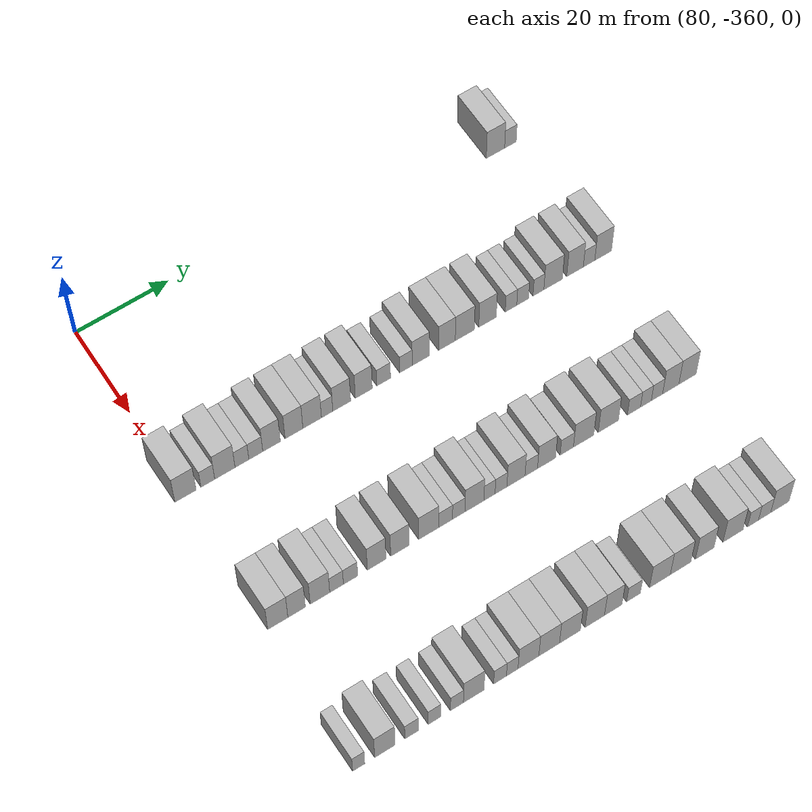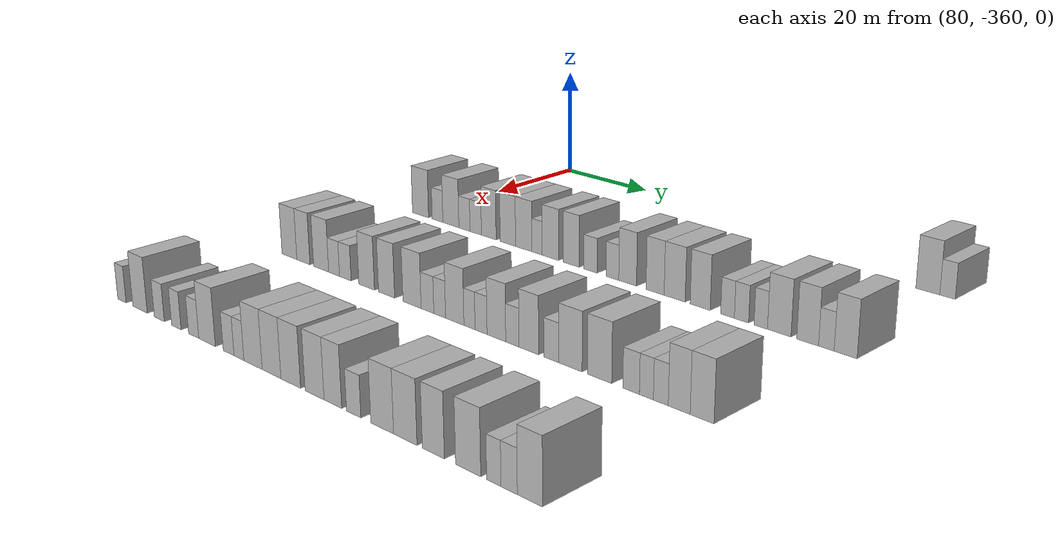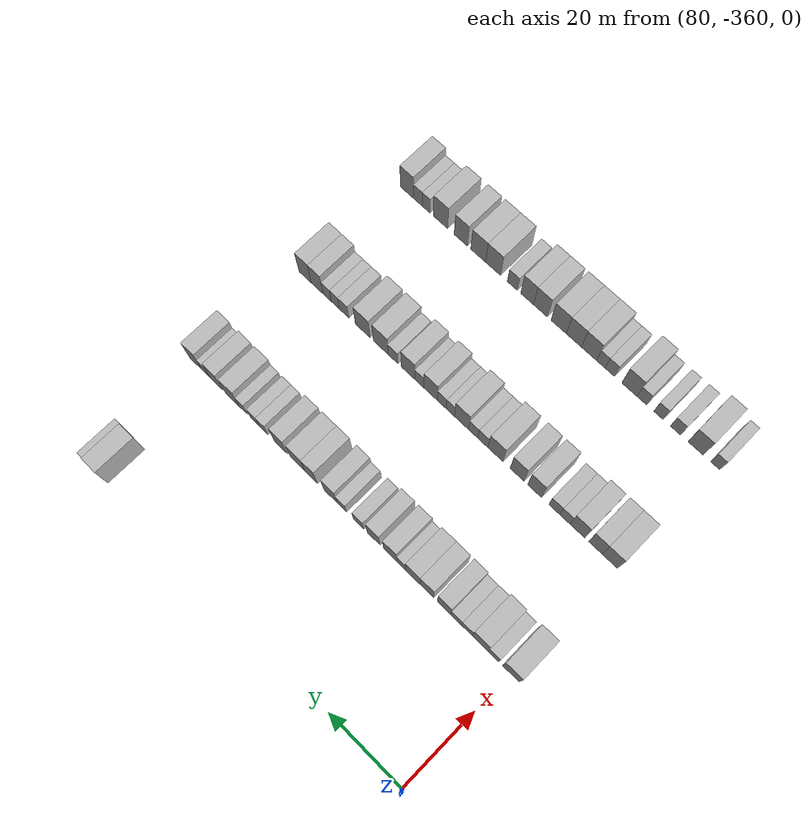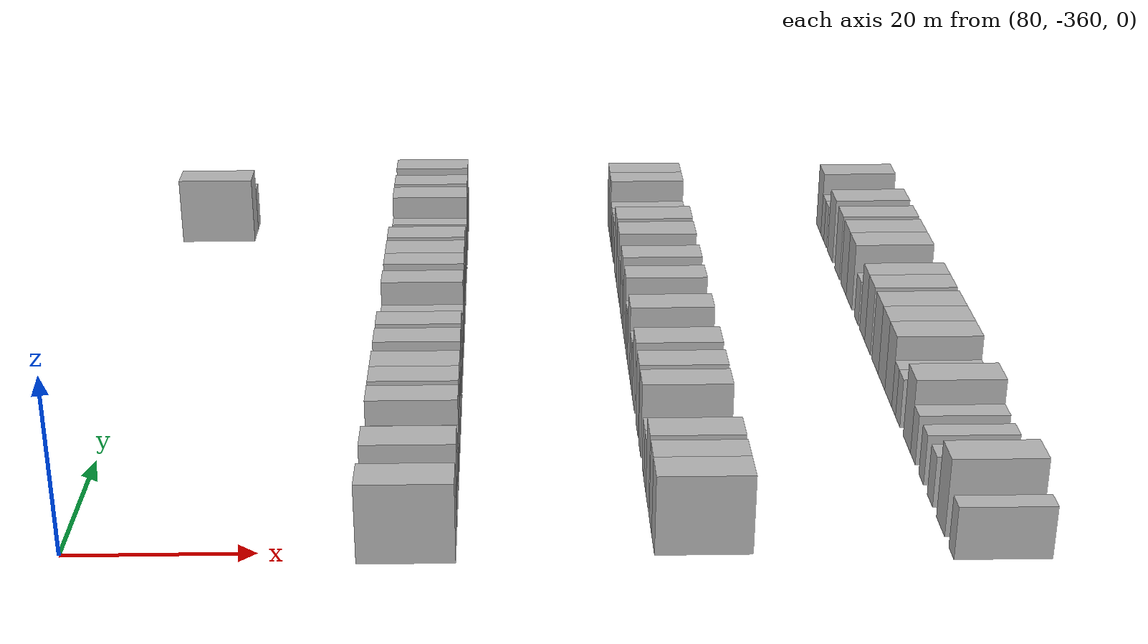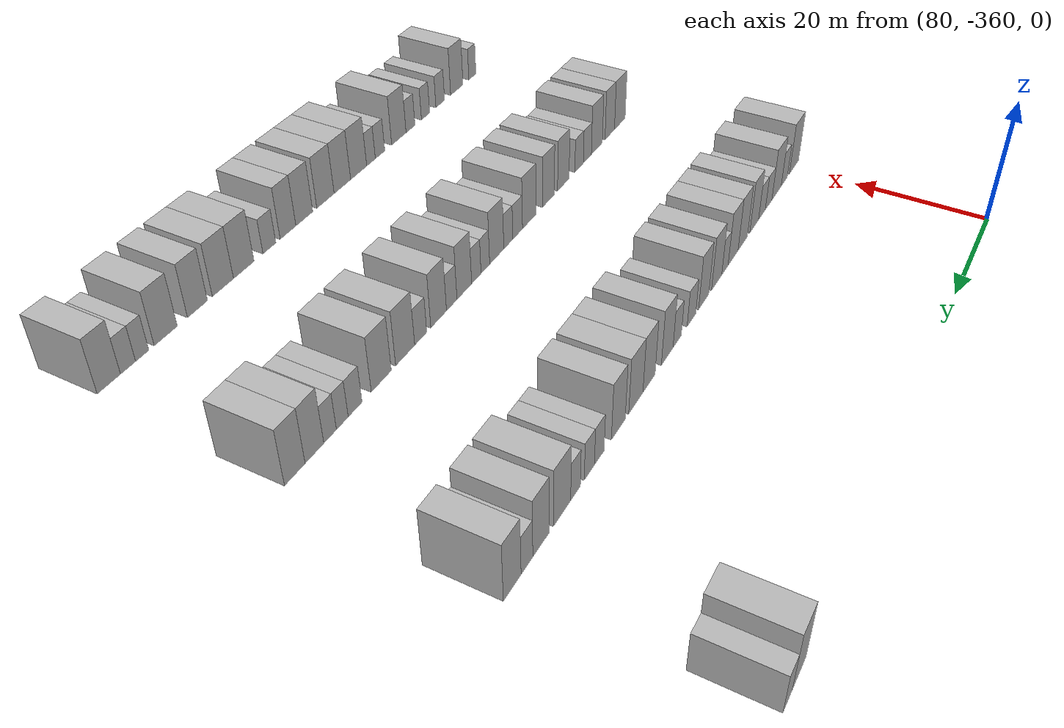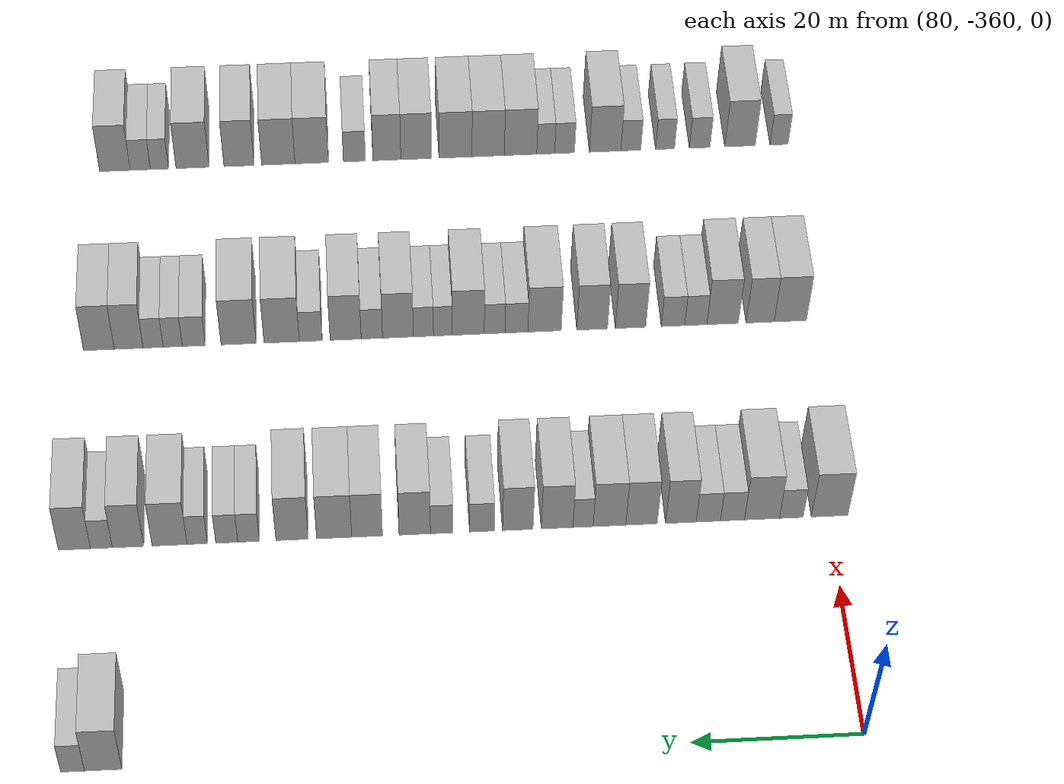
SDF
<sdf version="1.6">
 <world name="default">
  <model name="building_507">
   <static>1</static>
   <pose>85.0000 -273.1132 0 0.000000 0.000000 0.000000</pose>
   <link name="link">
    <pose>0 0 4.50 0 0 0</pose>
    <collision name="collision"><geometry><box><size>10.0000 4.2393 9.0000</size></box></geometry></collision>
    <visual name="visual">
     <cast_shadows>0</cast_shadows>
     <geometry><box><size>10.0000 4.2393 9.0000</size></box></geometry>
     <material>
      <script>
       <uri>model://HANNAS_wall/materials/scripts</uri>
       <uri>model://HANNAS_wall/materials/textures</uri>
       <name>vrc/HANNAS_wall</name>
      </script>
     </material>
    </visual>
   </link>
  </model>
  <model name="building_508">
   <static>1</static>
   <pose>85.0000 -269.6487 0 0.000000 0.000000 0.000000</pose>
   <link name="link">
    <pose>0 0 3.00 0 0 0</pose>
    <collision name="collision"><geometry><box><size>10.0000 2.6899 6.0000</size></box></geometry></collision>
    <visual name="visual">
     <cast_shadows>0</cast_shadows>
     <geometry><box><size>10.0000 2.6899 6.0000</size></box></geometry>
     <material>
      <script>
       <uri>model://HANNAS_wall/materials/scripts</uri>
       <uri>model://HANNAS_wall/materials/textures</uri>
       <name>vrc/HANNAS_wall</name>
      </script>
     </material>
    </visual>
   </link>
  </model>
  <model name="building_715">
   <static>1</static>
   <pose>115.0000 -360.1234 0 0.000000 0.000000 0.000000</pose>
   <link name="link">
    <pose>0 0 4.50 0 0 0</pose>
    <collision name="collision"><geometry><box><size>10.0000 4.4433 9.0000</size></box></geometry></collision>
    <visual name="visual">
     <cast_shadows>0</cast_shadows>
     <geometry><box><size>10.0000 4.4433 9.0000</size></box></geometry>
     <material>
      <script>
       <uri>model://HANNAS_wall/materials/scripts</uri>
       <uri>model://HANNAS_wall/materials/textures</uri>
       <name>vrc/HANNAS_wall</name>
      </script>
     </material>
    </visual>
   </link>
  </model>
  <model name="building_716">
   <static>1</static>
   <pose>115.0000 -355.4570 0 0.000000 0.000000 0.000000</pose>
   <link name="link">
    <pose>0 0 3.00 0 0 0</pose>
    <collision name="collision"><geometry><box><size>10.0000 2.8895 6.0000</size></box></geometry></collision>
    <visual name="visual">
     <cast_shadows>0</cast_shadows>
     <geometry><box><size>10.0000 2.8895 6.0000</size></box></geometry>
     <material>
      <script>
       <uri>model://HANNAS_wall/materials/scripts</uri>
       <uri>model://HANNAS_wall/materials/textures</uri>
       <name>vrc/HANNAS_wall</name>
      </script>
     </material>
    </visual>
   </link>
  </model>
  <model name="building_717">
   <static>1</static>
   <pose>115.0000 -351.8802 0 0.000000 0.000000 0.000000</pose>
   <link name="link">
    <pose>0 0 4.50 0 0 0</pose>
    <collision name="collision"><geometry><box><size>10.0000 4.2643 9.0000</size></box></geometry></collision>
    <visual name="visual">
     <cast_shadows>0</cast_shadows>
     <geometry><box><size>10.0000 4.2643 9.0000</size></box></geometry>
     <material>
      <script>
       <uri>model://HANNAS_wall/materials/scripts</uri>
       <uri>model://HANNAS_wall/materials/textures</uri>
       <name>vrc/HANNAS_wall</name>
      </script>
     </material>
    </visual>
   </link>
  </model>
  <model name="building_718">
   <static>1</static>
   <pose>115.0000 -348.2892 0 0.000000 0.000000 0.000000</pose>
   <link name="link">
    <pose>0 0 3.00 0 0 0</pose>
    <collision name="collision"><geometry><box><size>10.0000 2.9176 6.0000</size></box></geometry></collision>
    <visual name="visual">
     <cast_shadows>0</cast_shadows>
     <geometry><box><size>10.0000 2.9176 6.0000</size></box></geometry>
     <material>
      <script>
       <uri>model://HANNAS_wall/materials/scripts</uri>
       <uri>model://HANNAS_wall/materials/textures</uri>
       <name>vrc/HANNAS_wall</name>
      </script>
     </material>
    </visual>
   </link>
  </model>
  <model name="building_719">
   <static>1</static>
   <pose>115.0000 -345.3534 0 0.000000 0.000000 0.000000</pose>
   <link name="link">
    <pose>0 0 3.00 0 0 0</pose>
    <collision name="collision"><geometry><box><size>10.0000 2.9541 6.0000</size></box></geometry></collision>
    <visual name="visual">
     <cast_shadows>0</cast_shadows>
     <geometry><box><size>10.0000 2.9541 6.0000</size></box></geometry>
     <material>
      <script>
       <uri>model://HANNAS_wall/materials/scripts</uri>
       <uri>model://HANNAS_wall/materials/textures</uri>
       <name>vrc/HANNAS_wall</name>
      </script>
     </material>
    </visual>
   </link>
  </model>
  <model name="building_720">
   <static>1</static>
   <pose>115.0000 -342.0150 0 0.000000 0.000000 0.000000</pose>
   <link name="link">
    <pose>0 0 4.50 0 0 0</pose>
    <collision name="collision"><geometry><box><size>10.0000 3.7225 9.0000</size></box></geometry></collision>
    <visual name="visual">
     <cast_shadows>0</cast_shadows>
     <geometry><box><size>10.0000 3.7225 9.0000</size></box></geometry>
     <material>
      <script>
       <uri>model://HANNAS_wall/materials/scripts</uri>
       <uri>model://HANNAS_wall/materials/textures</uri>
       <name>vrc/HANNAS_wall</name>
      </script>
     </material>
    </visual>
   </link>
  </model>
  <model name="building_721">
   <static>1</static>
   <pose>115.0000 -337.2494 0 0.000000 0.000000 0.000000</pose>
   <link name="link">
    <pose>0 0 4.50 0 0 0</pose>
    <collision name="collision"><geometry><box><size>10.0000 3.8089 9.0000</size></box></geometry></collision>
    <visual name="visual">
     <cast_shadows>0</cast_shadows>
     <geometry><box><size>10.0000 3.8089 9.0000</size></box></geometry>
     <material>
      <script>
       <uri>model://HANNAS_wall/materials/scripts</uri>
       <uri>model://HANNAS_wall/materials/textures</uri>
       <name>vrc/HANNAS_wall</name>
      </script>
     </material>
    </visual>
   </link>
  </model>
  <model name="building_722">
   <static>1</static>
   <pose>115.0000 -333.3593 0 0.000000 0.000000 0.000000</pose>
   <link name="link">
    <pose>0 0 4.50 0 0 0</pose>
    <collision name="collision"><geometry><box><size>10.0000 3.9713 9.0000</size></box></geometry></collision>
    <visual name="visual">
     <cast_shadows>0</cast_shadows>
     <geometry><box><size>10.0000 3.9713 9.0000</size></box></geometry>
     <material>
      <script>
       <uri>model://HANNAS_wall/materials/scripts</uri>
       <uri>model://HANNAS_wall/materials/textures</uri>
       <name>vrc/HANNAS_wall</name>
      </script>
     </material>
    </visual>
   </link>
  </model>
  <model name="building_723">
   <static>1</static>
   <pose>115.0000 -330.1546 0 0.000000 0.000000 0.000000</pose>
   <link name="link">
    <pose>0 0 3.00 0 0 0</pose>
    <collision name="collision"><geometry><box><size>10.0000 2.4380 6.0000</size></box></geometry></collision>
    <visual name="visual">
     <cast_shadows>0</cast_shadows>
     <geometry><box><size>10.0000 2.4380 6.0000</size></box></geometry>
     <material>
      <script>
       <uri>model://HANNAS_wall/materials/scripts</uri>
       <uri>model://HANNAS_wall/materials/textures</uri>
       <name>vrc/HANNAS_wall</name>
      </script>
     </material>
    </visual>
   </link>
  </model>
  <model name="building_724">
   <static>1</static>
   <pose>115.0000 -327.0117 0 0.000000 0.000000 0.000000</pose>
   <link name="link">
    <pose>0 0 4.50 0 0 0</pose>
    <collision name="collision"><geometry><box><size>10.0000 3.8478 9.0000</size></box></geometry></collision>
    <visual name="visual">
     <cast_shadows>0</cast_shadows>
     <geometry><box><size>10.0000 3.8478 9.0000</size></box></geometry>
     <material>
      <script>
       <uri>model://HANNAS_wall/materials/scripts</uri>
       <uri>model://HANNAS_wall/materials/textures</uri>
       <name>vrc/HANNAS_wall</name>
      </script>
     </material>
    </visual>
   </link>
  </model>
  <model name="building_725">
   <static>1</static>
   <pose>115.0000 -322.2455 0 0.000000 0.000000 0.000000</pose>
   <link name="link">
    <pose>0 0 4.50 0 0 0</pose>
    <collision name="collision"><geometry><box><size>10.0000 3.6845 9.0000</size></box></geometry></collision>
    <visual name="visual">
     <cast_shadows>0</cast_shadows>
     <geometry><box><size>10.0000 3.6845 9.0000</size></box></geometry>
     <material>
      <script>
       <uri>model://HANNAS_wall/materials/scripts</uri>
       <uri>model://HANNAS_wall/materials/textures</uri>
       <name>vrc/HANNAS_wall</name>
      </script>
     </material>
    </visual>
   </link>
  </model>
  <model name="building_726">
   <static>1</static>
   <pose>115.0000 -317.9139 0 0.000000 0.000000 0.000000</pose>
   <link name="link">
    <pose>0 0 3.00 0 0 0</pose>
    <collision name="collision"><geometry><box><size>10.0000 2.9788 6.0000</size></box></geometry></collision>
    <visual name="visual">
     <cast_shadows>0</cast_shadows>
     <geometry><box><size>10.0000 2.9788 6.0000</size></box></geometry>
     <material>
      <script>
       <uri>model://HANNAS_wall/materials/scripts</uri>
       <uri>model://HANNAS_wall/materials/textures</uri>
       <name>vrc/HANNAS_wall</name>
      </script>
     </material>
    </visual>
   </link>
  </model>
  <model name="building_727">
   <static>1</static>
   <pose>115.0000 -313.0531 0 0.000000 0.000000 0.000000</pose>
   <link name="link">
    <pose>0 0 3.00 0 0 0</pose>
    <collision name="collision"><geometry><box><size>10.0000 2.7428 6.0000</size></box></geometry></collision>
    <visual name="visual">
     <cast_shadows>0</cast_shadows>
     <geometry><box><size>10.0000 2.7428 6.0000</size></box></geometry>
     <material>
      <script>
       <uri>model://HANNAS_wall/materials/scripts</uri>
       <uri>model://HANNAS_wall/materials/textures</uri>
       <name>vrc/HANNAS_wall</name>
      </script>
     </material>
    </visual>
   </link>
  </model>
  <model name="building_728">
   <static>1</static>
   <pose>115.0000 -309.7960 0 0.000000 0.000000 0.000000</pose>
   <link name="link">
    <pose>0 0 4.50 0 0 0</pose>
    <collision name="collision"><geometry><box><size>10.0000 3.7714 9.0000</size></box></geometry></collision>
    <visual name="visual">
     <cast_shadows>0</cast_shadows>
     <geometry><box><size>10.0000 3.7714 9.0000</size></box></geometry>
     <material>
      <script>
       <uri>model://HANNAS_wall/materials/scripts</uri>
       <uri>model://HANNAS_wall/materials/textures</uri>
       <name>vrc/HANNAS_wall</name>
      </script>
     </material>
    </visual>
   </link>
  </model>
  <model name="building_729">
   <static>1</static>
   <pose>115.0000 -304.0534 0 0.000000 0.000000 0.000000</pose>
   <link name="link">
    <pose>0 0 4.50 0 0 0</pose>
    <collision name="collision"><geometry><box><size>10.0000 3.7137 9.0000</size></box></geometry></collision>
    <visual name="visual">
     <cast_shadows>0</cast_shadows>
     <geometry><box><size>10.0000 3.7137 9.0000</size></box></geometry>
     <material>
      <script>
       <uri>model://HANNAS_wall/materials/scripts</uri>
       <uri>model://HANNAS_wall/materials/textures</uri>
       <name>vrc/HANNAS_wall</name>
      </script>
     </material>
    </visual>
   </link>
  </model>
  <model name="building_730">
   <static>1</static>
   <pose>115.0000 -300.0844 0 0.000000 0.000000 0.000000</pose>
   <link name="link">
    <pose>0 0 4.50 0 0 0</pose>
    <collision name="collision"><geometry><box><size>10.0000 4.2243 9.0000</size></box></geometry></collision>
    <visual name="visual">
     <cast_shadows>0</cast_shadows>
     <geometry><box><size>10.0000 4.2243 9.0000</size></box></geometry>
     <material>
      <script>
       <uri>model://HANNAS_wall/materials/scripts</uri>
       <uri>model://HANNAS_wall/materials/textures</uri>
       <name>vrc/HANNAS_wall</name>
      </script>
     </material>
    </visual>
   </link>
  </model>
  <model name="building_731">
   <static>1</static>
   <pose>115.0000 -295.0228 0 0.000000 0.000000 0.000000</pose>
   <link name="link">
    <pose>0 0 4.50 0 0 0</pose>
    <collision name="collision"><geometry><box><size>10.0000 3.8989 9.0000</size></box></geometry></collision>
    <visual name="visual">
     <cast_shadows>0</cast_shadows>
     <geometry><box><size>10.0000 3.8989 9.0000</size></box></geometry>
     <material>
      <script>
       <uri>model://HANNAS_wall/materials/scripts</uri>
       <uri>model://HANNAS_wall/materials/textures</uri>
       <name>vrc/HANNAS_wall</name>
      </script>
     </material>
    </visual>
   </link>
  </model>
  <model name="building_732">
   <static>1</static>
   <pose>115.0000 -289.7770 0 0.000000 0.000000 0.000000</pose>
   <link name="link">
    <pose>0 0 3.00 0 0 0</pose>
    <collision name="collision"><geometry><box><size>10.0000 2.5926 6.0000</size></box></geometry></collision>
    <visual name="visual">
     <cast_shadows>0</cast_shadows>
     <geometry><box><size>10.0000 2.5926 6.0000</size></box></geometry>
     <material>
      <script>
       <uri>model://HANNAS_wall/materials/scripts</uri>
       <uri>model://HANNAS_wall/materials/textures</uri>
       <name>vrc/HANNAS_wall</name>
      </script>
     </material>
    </visual>
   </link>
  </model>
  <model name="building_733">
   <static>1</static>
   <pose>115.0000 -287.1568 0 0.000000 0.000000 0.000000</pose>
   <link name="link">
    <pose>0 0 3.00 0 0 0</pose>
    <collision name="collision"><geometry><box><size>10.0000 2.6479 6.0000</size></box></geometry></collision>
    <visual name="visual">
     <cast_shadows>0</cast_shadows>
     <geometry><box><size>10.0000 2.6479 6.0000</size></box></geometry>
     <material>
      <script>
       <uri>model://HANNAS_wall/materials/scripts</uri>
       <uri>model://HANNAS_wall/materials/textures</uri>
       <name>vrc/HANNAS_wall</name>
      </script>
     </material>
    </visual>
   </link>
  </model>
  <model name="building_734">
   <static>1</static>
   <pose>115.0000 -283.6092 0 0.000000 0.000000 0.000000</pose>
   <link name="link">
    <pose>0 0 3.00 0 0 0</pose>
    <collision name="collision"><geometry><box><size>10.0000 2.4473 6.0000</size></box></geometry></collision>
    <visual name="visual">
     <cast_shadows>0</cast_shadows>
     <geometry><box><size>10.0000 2.4473 6.0000</size></box></geometry>
     <material>
      <script>
       <uri>model://HANNAS_wall/materials/scripts</uri>
       <uri>model://HANNAS_wall/materials/textures</uri>
       <name>vrc/HANNAS_wall</name>
      </script>
     </material>
    </visual>
   </link>
  </model>
  <model name="building_735">
   <static>1</static>
   <pose>115.0000 -280.2866 0 0.000000 0.000000 0.000000</pose>
   <link name="link">
    <pose>0 0 4.50 0 0 0</pose>
    <collision name="collision"><geometry><box><size>10.0000 4.1977 9.0000</size></box></geometry></collision>
    <visual name="visual">
     <cast_shadows>0</cast_shadows>
     <geometry><box><size>10.0000 4.1977 9.0000</size></box></geometry>
     <material>
      <script>
       <uri>model://HANNAS_wall/materials/scripts</uri>
       <uri>model://HANNAS_wall/materials/textures</uri>
       <name>vrc/HANNAS_wall</name>
      </script>
     </material>
    </visual>
   </link>
  </model>
  <model name="building_736">
   <static>1</static>
   <pose>115.0000 -275.3016 0 0.000000 0.000000 0.000000</pose>
   <link name="link">
    <pose>0 0 4.50 0 0 0</pose>
    <collision name="collision"><geometry><box><size>10.0000 3.7723 9.0000</size></box></geometry></collision>
    <visual name="visual">
     <cast_shadows>0</cast_shadows>
     <geometry><box><size>10.0000 3.7723 9.0000</size></box></geometry>
     <material>
      <script>
       <uri>model://HANNAS_wall/materials/scripts</uri>
       <uri>model://HANNAS_wall/materials/textures</uri>
       <name>vrc/HANNAS_wall</name>
      </script>
     </material>
    </visual>
   </link>
  </model>
  <model name="building_737">
   <static>1</static>
   <pose>115.0000 -272.1037 0 0.000000 0.000000 0.000000</pose>
   <link name="link">
    <pose>0 0 3.00 0 0 0</pose>
    <collision name="collision"><geometry><box><size>10.0000 2.6237 6.0000</size></box></geometry></collision>
    <visual name="visual">
     <cast_shadows>0</cast_shadows>
     <geometry><box><size>10.0000 2.6237 6.0000</size></box></geometry>
     <material>
      <script>
       <uri>model://HANNAS_wall/materials/scripts</uri>
       <uri>model://HANNAS_wall/materials/textures</uri>
       <name>vrc/HANNAS_wall</name>
      </script>
     </material>
    </visual>
   </link>
  </model>
  <model name="building_738">
   <static>1</static>
   <pose>115.0000 -268.8791 0 0.000000 0.000000 0.000000</pose>
   <link name="link">
    <pose>0 0 4.50 0 0 0</pose>
    <collision name="collision"><geometry><box><size>10.0000 3.8254 9.0000</size></box></geometry></collision>
    <visual name="visual">
     <cast_shadows>0</cast_shadows>
     <geometry><box><size>10.0000 3.8254 9.0000</size></box></geometry>
     <material>
      <script>
       <uri>model://HANNAS_wall/materials/scripts</uri>
       <uri>model://HANNAS_wall/materials/textures</uri>
       <name>vrc/HANNAS_wall</name>
      </script>
     </material>
    </visual>
   </link>
  </model>
  <model name="building_950">
   <static>1</static>
   <pose>145.0000 -359.2117 0 0.000000 0.000000 0.000000</pose>
   <link name="link">
    <pose>0 0 4.50 0 0 0</pose>
    <collision name="collision"><geometry><box><size>10.0000 4.1515 9.0000</size></box></geometry></collision>
    <visual name="visual">
     <cast_shadows>0</cast_shadows>
     <geometry><box><size>10.0000 4.1515 9.0000</size></box></geometry>
     <material>
      <script>
       <uri>model://HANNAS_wall/materials/scripts</uri>
       <uri>model://HANNAS_wall/materials/textures</uri>
       <name>vrc/HANNAS_wall</name>
      </script>
     </material>
    </visual>
   </link>
  </model>
  <model name="building_951">
   <static>1</static>
   <pose>145.0000 -355.3317 0 0.000000 0.000000 0.000000</pose>
   <link name="link">
    <pose>0 0 4.50 0 0 0</pose>
    <collision name="collision"><geometry><box><size>10.0000 3.6085 9.0000</size></box></geometry></collision>
    <visual name="visual">
     <cast_shadows>0</cast_shadows>
     <geometry><box><size>10.0000 3.6085 9.0000</size></box></geometry>
     <material>
      <script>
       <uri>model://HANNAS_wall/materials/scripts</uri>
       <uri>model://HANNAS_wall/materials/textures</uri>
       <name>vrc/HANNAS_wall</name>
      </script>
     </material>
    </visual>
   </link>
  </model>
  <model name="building_952">
   <static>1</static>
   <pose>145.0000 -350.5087 0 0.000000 0.000000 0.000000</pose>
   <link name="link">
    <pose>0 0 4.50 0 0 0</pose>
    <collision name="collision"><geometry><box><size>10.0000 4.0374 9.0000</size></box></geometry></collision>
    <visual name="visual">
     <cast_shadows>0</cast_shadows>
     <geometry><box><size>10.0000 4.0374 9.0000</size></box></geometry>
     <material>
      <script>
       <uri>model://HANNAS_wall/materials/scripts</uri>
       <uri>model://HANNAS_wall/materials/textures</uri>
       <name>vrc/HANNAS_wall</name>
      </script>
     </material>
    </visual>
   </link>
  </model>
  <model name="building_953">
   <static>1</static>
   <pose>145.0000 -347.0653 0 0.000000 0.000000 0.000000</pose>
   <link name="link">
    <pose>0 0 3.00 0 0 0</pose>
    <collision name="collision"><geometry><box><size>10.0000 2.8495 6.0000</size></box></geometry></collision>
    <visual name="visual">
     <cast_shadows>0</cast_shadows>
     <geometry><box><size>10.0000 2.8495 6.0000</size></box></geometry>
     <material>
      <script>
       <uri>model://HANNAS_wall/materials/scripts</uri>
       <uri>model://HANNAS_wall/materials/textures</uri>
       <name>vrc/HANNAS_wall</name>
      </script>
     </material>
    </visual>
   </link>
  </model>
  <model name="building_954">
   <static>1</static>
   <pose>145.0000 -344.1446 0 0.000000 0.000000 0.000000</pose>
   <link name="link">
    <pose>0 0 3.00 0 0 0</pose>
    <collision name="collision"><geometry><box><size>10.0000 2.9919 6.0000</size></box></geometry></collision>
    <visual name="visual">
     <cast_shadows>0</cast_shadows>
     <geometry><box><size>10.0000 2.9919 6.0000</size></box></geometry>
     <material>
      <script>
       <uri>model://HANNAS_wall/materials/scripts</uri>
       <uri>model://HANNAS_wall/materials/textures</uri>
       <name>vrc/HANNAS_wall</name>
      </script>
     </material>
    </visual>
   </link>
  </model>
  <model name="building_955">
   <static>1</static>
   <pose>145.0000 -338.6968 0 0.000000 0.000000 0.000000</pose>
   <link name="link">
    <pose>0 0 4.50 0 0 0</pose>
    <collision name="collision"><geometry><box><size>10.0000 3.9037 9.0000</size></box></geometry></collision>
    <visual name="visual">
     <cast_shadows>0</cast_shadows>
     <geometry><box><size>10.0000 3.9037 9.0000</size></box></geometry>
     <material>
      <script>
       <uri>model://HANNAS_wall/materials/scripts</uri>
       <uri>model://HANNAS_wall/materials/textures</uri>
       <name>vrc/HANNAS_wall</name>
      </script>
     </material>
    </visual>
   </link>
  </model>
  <model name="building_956">
   <static>1</static>
   <pose>145.0000 -333.7832 0 0.000000 0.000000 0.000000</pose>
   <link name="link">
    <pose>0 0 4.50 0 0 0</pose>
    <collision name="collision"><geometry><box><size>10.0000 3.9234 9.0000</size></box></geometry></collision>
    <visual name="visual">
     <cast_shadows>0</cast_shadows>
     <geometry><box><size>10.0000 3.9234 9.0000</size></box></geometry>
     <material>
      <script>
       <uri>model://HANNAS_wall/materials/scripts</uri>
       <uri>model://HANNAS_wall/materials/textures</uri>
       <name>vrc/HANNAS_wall</name>
      </script>
     </material>
    </visual>
   </link>
  </model>
  <model name="building_957">
   <static>1</static>
   <pose>145.0000 -327.6876 0 0.000000 0.000000 0.000000</pose>
   <link name="link">
    <pose>0 0 4.50 0 0 0</pose>
    <collision name="collision"><geometry><box><size>10.0000 4.2677 9.0000</size></box></geometry></collision>
    <visual name="visual">
     <cast_shadows>0</cast_shadows>
     <geometry><box><size>10.0000 4.2677 9.0000</size></box></geometry>
     <material>
      <script>
       <uri>model://HANNAS_wall/materials/scripts</uri>
       <uri>model://HANNAS_wall/materials/textures</uri>
       <name>vrc/HANNAS_wall</name>
      </script>
     </material>
    </visual>
   </link>
  </model>
  <model name="building_958">
   <static>1</static>
   <pose>145.0000 -324.0923 0 0.000000 0.000000 0.000000</pose>
   <link name="link">
    <pose>0 0 3.00 0 0 0</pose>
    <collision name="collision"><geometry><box><size>10.0000 2.9228 6.0000</size></box></geometry></collision>
    <visual name="visual">
     <cast_shadows>0</cast_shadows>
     <geometry><box><size>10.0000 2.9228 6.0000</size></box></geometry>
     <material>
      <script>
       <uri>model://HANNAS_wall/materials/scripts</uri>
       <uri>model://HANNAS_wall/materials/textures</uri>
       <name>vrc/HANNAS_wall</name>
      </script>
     </material>
    </visual>
   </link>
  </model>
  <model name="building_959">
   <static>1</static>
   <pose>145.0000 -321.3006 0 0.000000 0.000000 0.000000</pose>
   <link name="link">
    <pose>0 0 3.00 0 0 0</pose>
    <collision name="collision"><geometry><box><size>10.0000 2.6607 6.0000</size></box></geometry></collision>
    <visual name="visual">
     <cast_shadows>0</cast_shadows>
     <geometry><box><size>10.0000 2.6607 6.0000</size></box></geometry>
     <material>
      <script>
       <uri>model://HANNAS_wall/materials/scripts</uri>
       <uri>model://HANNAS_wall/materials/textures</uri>
       <name>vrc/HANNAS_wall</name>
      </script>
     </material>
    </visual>
   </link>
  </model>
  <model name="building_960">
   <static>1</static>
   <pose>145.0000 -317.9375 0 0.000000 0.000000 0.000000</pose>
   <link name="link">
    <pose>0 0 4.50 0 0 0</pose>
    <collision name="collision"><geometry><box><size>10.0000 4.0654 9.0000</size></box></geometry></collision>
    <visual name="visual">
     <cast_shadows>0</cast_shadows>
     <geometry><box><size>10.0000 4.0654 9.0000</size></box></geometry>
     <material>
      <script>
       <uri>model://HANNAS_wall/materials/scripts</uri>
       <uri>model://HANNAS_wall/materials/textures</uri>
       <name>vrc/HANNAS_wall</name>
      </script>
     </material>
    </visual>
   </link>
  </model>
  <model name="building_961">
   <static>1</static>
   <pose>145.0000 -314.6981 0 0.000000 0.000000 0.000000</pose>
   <link name="link">
    <pose>0 0 3.00 0 0 0</pose>
    <collision name="collision"><geometry><box><size>10.0000 2.4136 6.0000</size></box></geometry></collision>
    <visual name="visual">
     <cast_shadows>0</cast_shadows>
     <geometry><box><size>10.0000 2.4136 6.0000</size></box></geometry>
     <material>
      <script>
       <uri>model://HANNAS_wall/materials/scripts</uri>
       <uri>model://HANNAS_wall/materials/textures</uri>
       <name>vrc/HANNAS_wall</name>
      </script>
     </material>
    </visual>
   </link>
  </model>
  <model name="building_962">
   <static>1</static>
   <pose>145.0000 -312.2097 0 0.000000 0.000000 0.000000</pose>
   <link name="link">
    <pose>0 0 3.00 0 0 0</pose>
    <collision name="collision"><geometry><box><size>10.0000 2.5632 6.0000</size></box></geometry></collision>
    <visual name="visual">
     <cast_shadows>0</cast_shadows>
     <geometry><box><size>10.0000 2.5632 6.0000</size></box></geometry>
     <material>
      <script>
       <uri>model://HANNAS_wall/materials/scripts</uri>
       <uri>model://HANNAS_wall/materials/textures</uri>
       <name>vrc/HANNAS_wall</name>
      </script>
     </material>
    </visual>
   </link>
  </model>
  <model name="building_963">
   <static>1</static>
   <pose>145.0000 -308.9674 0 0.000000 0.000000 0.000000</pose>
   <link name="link">
    <pose>0 0 4.50 0 0 0</pose>
    <collision name="collision"><geometry><box><size>10.0000 3.9214 9.0000</size></box></geometry></collision>
    <visual name="visual">
     <cast_shadows>0</cast_shadows>
     <geometry><box><size>10.0000 3.9214 9.0000</size></box></geometry>
     <material>
      <script>
       <uri>model://HANNAS_wall/materials/scripts</uri>
       <uri>model://HANNAS_wall/materials/textures</uri>
       <name>vrc/HANNAS_wall</name>
      </script>
     </material>
    </visual>
   </link>
  </model>
  <model name="building_964">
   <static>1</static>
   <pose>145.0000 -305.6493 0 0.000000 0.000000 0.000000</pose>
   <link name="link">
    <pose>0 0 3.00 0 0 0</pose>
    <collision name="collision"><geometry><box><size>10.0000 2.7146 6.0000</size></box></geometry></collision>
    <visual name="visual">
     <cast_shadows>0</cast_shadows>
     <geometry><box><size>10.0000 2.7146 6.0000</size></box></geometry>
     <material>
      <script>
       <uri>model://HANNAS_wall/materials/scripts</uri>
       <uri>model://HANNAS_wall/materials/textures</uri>
       <name>vrc/HANNAS_wall</name>
      </script>
     </material>
    </visual>
   </link>
  </model>
  <model name="building_965">
   <static>1</static>
   <pose>145.0000 -302.3167 0 0.000000 0.000000 0.000000</pose>
   <link name="link">
    <pose>0 0 4.50 0 0 0</pose>
    <collision name="collision"><geometry><box><size>10.0000 3.9507 9.0000</size></box></geometry></collision>
    <visual name="visual">
     <cast_shadows>0</cast_shadows>
     <geometry><box><size>10.0000 3.9507 9.0000</size></box></geometry>
     <material>
      <script>
       <uri>model://HANNAS_wall/materials/scripts</uri>
       <uri>model://HANNAS_wall/materials/textures</uri>
       <name>vrc/HANNAS_wall</name>
      </script>
     </material>
    </visual>
   </link>
  </model>
  <model name="building_966">
   <static>1</static>
   <pose>145.0000 -297.8799 0 0.000000 0.000000 0.000000</pose>
   <link name="link">
    <pose>0 0 3.00 0 0 0</pose>
    <collision name="collision"><geometry><box><size>10.0000 2.9227 6.0000</size></box></geometry></collision>
    <visual name="visual">
     <cast_shadows>0</cast_shadows>
     <geometry><box><size>10.0000 2.9227 6.0000</size></box></geometry>
     <material>
      <script>
       <uri>model://HANNAS_wall/materials/scripts</uri>
       <uri>model://HANNAS_wall/materials/textures</uri>
       <name>vrc/HANNAS_wall</name>
      </script>
     </material>
    </visual>
   </link>
  </model>
  <model name="building_967">
   <static>1</static>
   <pose>145.0000 -294.1831 0 0.000000 0.000000 0.000000</pose>
   <link name="link">
    <pose>0 0 4.50 0 0 0</pose>
    <collision name="collision"><geometry><box><size>10.0000 4.4710 9.0000</size></box></geometry></collision>
    <visual name="visual">
     <cast_shadows>0</cast_shadows>
     <geometry><box><size>10.0000 4.4710 9.0000</size></box></geometry>
     <material>
      <script>
       <uri>model://HANNAS_wall/materials/scripts</uri>
       <uri>model://HANNAS_wall/materials/textures</uri>
       <name>vrc/HANNAS_wall</name>
      </script>
     </material>
    </visual>
   </link>
  </model>
  <model name="building_968">
   <static>1</static>
   <pose>145.0000 -288.7161 0 0.000000 0.000000 0.000000</pose>
   <link name="link">
    <pose>0 0 4.50 0 0 0</pose>
    <collision name="collision"><geometry><box><size>10.0000 4.4629 9.0000</size></box></geometry></collision>
    <visual name="visual">
     <cast_shadows>0</cast_shadows>
     <geometry><box><size>10.0000 4.4629 9.0000</size></box></geometry>
     <material>
      <script>
       <uri>model://HANNAS_wall/materials/scripts</uri>
       <uri>model://HANNAS_wall/materials/textures</uri>
       <name>vrc/HANNAS_wall</name>
      </script>
     </material>
    </visual>
   </link>
  </model>
  <model name="building_969">
   <static>1</static>
   <pose>145.0000 -283.0248 0 0.000000 0.000000 0.000000</pose>
   <link name="link">
    <pose>0 0 3.00 0 0 0</pose>
    <collision name="collision"><geometry><box><size>10.0000 2.9198 6.0000</size></box></geometry></collision>
    <visual name="visual">
     <cast_shadows>0</cast_shadows>
     <geometry><box><size>10.0000 2.9198 6.0000</size></box></geometry>
     <material>
      <script>
       <uri>model://HANNAS_wall/materials/scripts</uri>
       <uri>model://HANNAS_wall/materials/textures</uri>
       <name>vrc/HANNAS_wall</name>
      </script>
     </material>
    </visual>
   </link>
  </model>
  <model name="building_970">
   <static>1</static>
   <pose>145.0000 -280.3466 0 0.000000 0.000000 0.000000</pose>
   <link name="link">
    <pose>0 0 3.00 0 0 0</pose>
    <collision name="collision"><geometry><box><size>10.0000 2.4364 6.0000</size></box></geometry></collision>
    <visual name="visual">
     <cast_shadows>0</cast_shadows>
     <geometry><box><size>10.0000 2.4364 6.0000</size></box></geometry>
     <material>
      <script>
       <uri>model://HANNAS_wall/materials/scripts</uri>
       <uri>model://HANNAS_wall/materials/textures</uri>
       <name>vrc/HANNAS_wall</name>
      </script>
     </material>
    </visual>
   </link>
  </model>
  <model name="building_971">
   <static>1</static>
   <pose>145.0000 -277.8633 0 0.000000 0.000000 0.000000</pose>
   <link name="link">
    <pose>0 0 3.00 0 0 0</pose>
    <collision name="collision"><geometry><box><size>10.0000 2.5303 6.0000</size></box></geometry></collision>
    <visual name="visual">
     <cast_shadows>0</cast_shadows>
     <geometry><box><size>10.0000 2.5303 6.0000</size></box></geometry>
     <material>
      <script>
       <uri>model://HANNAS_wall/materials/scripts</uri>
       <uri>model://HANNAS_wall/materials/textures</uri>
       <name>vrc/HANNAS_wall</name>
      </script>
     </material>
    </visual>
   </link>
  </model>
  <model name="building_972">
   <static>1</static>
   <pose>145.0000 -274.7669 0 0.000000 0.000000 0.000000</pose>
   <link name="link">
    <pose>0 0 4.50 0 0 0</pose>
    <collision name="collision"><geometry><box><size>10.0000 3.6625 9.0000</size></box></geometry></collision>
    <visual name="visual">
     <cast_shadows>0</cast_shadows>
     <geometry><box><size>10.0000 3.6625 9.0000</size></box></geometry>
     <material>
      <script>
       <uri>model://HANNAS_wall/materials/scripts</uri>
       <uri>model://HANNAS_wall/materials/textures</uri>
       <name>vrc/HANNAS_wall</name>
      </script>
     </material>
    </visual>
   </link>
  </model>
  <model name="building_973">
   <static>1</static>
   <pose>145.0000 -270.9950 0 0.000000 0.000000 0.000000</pose>
   <link name="link">
    <pose>0 0 4.50 0 0 0</pose>
    <collision name="collision"><geometry><box><size>10.0000 3.8813 9.0000</size></box></geometry></collision>
    <visual name="visual">
     <cast_shadows>0</cast_shadows>
     <geometry><box><size>10.0000 3.8813 9.0000</size></box></geometry>
     <material>
      <script>
       <uri>model://HANNAS_wall/materials/scripts</uri>
       <uri>model://HANNAS_wall/materials/textures</uri>
       <name>vrc/HANNAS_wall</name>
      </script>
     </material>
    </visual>
   </link>
  </model>
  <model name="building_1163">
   <static>1</static>
   <pose>175.0000 -361.5642 0 0.000000 0.000000 0.000000</pose>
   <link name="link">
    <pose>0 0 3.00 0 0 0</pose>
    <collision name="collision"><geometry><box><size>10.0000 2.4484 6.0000</size></box></geometry></collision>
    <visual name="visual">
     <cast_shadows>0</cast_shadows>
     <geometry><box><size>10.0000 2.4484 6.0000</size></box></geometry>
     <material>
      <script>
       <uri>model://HANNAS_wall/materials/scripts</uri>
       <uri>model://HANNAS_wall/materials/textures</uri>
       <name>vrc/HANNAS_wall</name>
      </script>
     </material>
    </visual>
   </link>
  </model>
  <model name="building_1164">
   <static>1</static>
   <pose>175.0000 -356.2756 0 0.000000 0.000000 0.000000</pose>
   <link name="link">
    <pose>0 0 4.50 0 0 0</pose>
    <collision name="collision"><geometry><box><size>10.0000 4.1288 9.0000</size></box></geometry></collision>
    <visual name="visual">
     <cast_shadows>0</cast_shadows>
     <geometry><box><size>10.0000 4.1288 9.0000</size></box></geometry>
     <material>
      <script>
       <uri>model://HANNAS_wall/materials/scripts</uri>
       <uri>model://HANNAS_wall/materials/textures</uri>
       <name>vrc/HANNAS_wall</name>
      </script>
     </material>
    </visual>
   </link>
  </model>
  <model name="building_1165">
   <static>1</static>
   <pose>175.0000 -350.8205 0 0.000000 0.000000 0.000000</pose>
   <link name="link">
    <pose>0 0 3.00 0 0 0</pose>
    <collision name="collision"><geometry><box><size>10.0000 2.7814 6.0000</size></box></geometry></collision>
    <visual name="visual">
     <cast_shadows>0</cast_shadows>
     <geometry><box><size>10.0000 2.7814 6.0000</size></box></geometry>
     <material>
      <script>
       <uri>model://HANNAS_wall/materials/scripts</uri>
       <uri>model://HANNAS_wall/materials/textures</uri>
       <name>vrc/HANNAS_wall</name>
      </script>
     </material>
    </visual>
   </link>
  </model>
  <model name="building_1166">
   <static>1</static>
   <pose>175.0000 -346.1458 0 0.000000 0.000000 0.000000</pose>
   <link name="link">
    <pose>0 0 3.00 0 0 0</pose>
    <collision name="collision"><geometry><box><size>10.0000 2.5680 6.0000</size></box></geometry></collision>
    <visual name="visual">
     <cast_shadows>0</cast_shadows>
     <geometry><box><size>10.0000 2.5680 6.0000</size></box></geometry>
     <material>
      <script>
       <uri>model://HANNAS_wall/materials/scripts</uri>
       <uri>model://HANNAS_wall/materials/textures</uri>
       <name>vrc/HANNAS_wall</name>
      </script>
     </material>
    </visual>
   </link>
  </model>
  <model name="building_1167">
   <static>1</static>
   <pose>175.0000 -341.5217 0 0.000000 0.000000 0.000000</pose>
   <link name="link">
    <pose>0 0 3.00 0 0 0</pose>
    <collision name="collision"><geometry><box><size>10.0000 2.6803 6.0000</size></box></geometry></collision>
    <visual name="visual">
     <cast_shadows>0</cast_shadows>
     <geometry><box><size>10.0000 2.6803 6.0000</size></box></geometry>
     <material>
      <script>
       <uri>model://HANNAS_wall/materials/scripts</uri>
       <uri>model://HANNAS_wall/materials/textures</uri>
       <name>vrc/HANNAS_wall</name>
      </script>
     </material>
    </visual>
   </link>
  </model>
  <model name="building_1168">
   <static>1</static>
   <pose>175.0000 -338.0541 0 0.000000 0.000000 0.000000</pose>
   <link name="link">
    <pose>0 0 4.50 0 0 0</pose>
    <collision name="collision"><geometry><box><size>10.0000 4.2548 9.0000</size></box></geometry></collision>
    <visual name="visual">
     <cast_shadows>0</cast_shadows>
     <geometry><box><size>10.0000 4.2548 9.0000</size></box></geometry>
     <material>
      <script>
       <uri>model://HANNAS_wall/materials/scripts</uri>
       <uri>model://HANNAS_wall/materials/textures</uri>
       <name>vrc/HANNAS_wall</name>
      </script>
     </material>
    </visual>
   </link>
  </model>
  <model name="building_1169">
   <static>1</static>
   <pose>175.0000 -332.5899 0 0.000000 0.000000 0.000000</pose>
   <link name="link">
    <pose>0 0 3.00 0 0 0</pose>
    <collision name="collision"><geometry><box><size>10.0000 2.6737 6.0000</size></box></geometry></collision>
    <visual name="visual">
     <cast_shadows>0</cast_shadows>
     <geometry><box><size>10.0000 2.6737 6.0000</size></box></geometry>
     <material>
      <script>
       <uri>model://HANNAS_wall/materials/scripts</uri>
       <uri>model://HANNAS_wall/materials/textures</uri>
       <name>vrc/HANNAS_wall</name>
      </script>
     </material>
    </visual>
   </link>
  </model>
  <model name="building_1170">
   <static>1</static>
   <pose>175.0000 -330.0458 0 0.000000 0.000000 0.000000</pose>
   <link name="link">
    <pose>0 0 3.00 0 0 0</pose>
    <collision name="collision"><geometry><box><size>10.0000 2.4147 6.0000</size></box></geometry></collision>
    <visual name="visual">
     <cast_shadows>0</cast_shadows>
     <geometry><box><size>10.0000 2.4147 6.0000</size></box></geometry>
     <material>
      <script>
       <uri>model://HANNAS_wall/materials/scripts</uri>
       <uri>model://HANNAS_wall/materials/textures</uri>
       <name>vrc/HANNAS_wall</name>
      </script>
     </material>
    </visual>
   </link>
  </model>
  <model name="building_1171">
   <static>1</static>
   <pose>175.0000 -326.6553 0 0.000000 0.000000 0.000000</pose>
   <link name="link">
    <pose>0 0 4.50 0 0 0</pose>
    <collision name="collision"><geometry><box><size>10.0000 4.3662 9.0000</size></box></geometry></collision>
    <visual name="visual">
     <cast_shadows>0</cast_shadows>
     <geometry><box><size>10.0000 4.3662 9.0000</size></box></geometry>
     <material>
      <script>
       <uri>model://HANNAS_wall/materials/scripts</uri>
       <uri>model://HANNAS_wall/materials/textures</uri>
       <name>vrc/HANNAS_wall</name>
      </script>
     </material>
    </visual>
   </link>
  </model>
  <model name="building_1172">
   <static>1</static>
   <pose>175.0000 -322.2942 0 0.000000 0.000000 0.000000</pose>
   <link name="link">
    <pose>0 0 4.50 0 0 0</pose>
    <collision name="collision"><geometry><box><size>10.0000 4.3561 9.0000</size></box></geometry></collision>
    <visual name="visual">
     <cast_shadows>0</cast_shadows>
     <geometry><box><size>10.0000 4.3561 9.0000</size></box></geometry>
     <material>
      <script>
       <uri>model://HANNAS_wall/materials/scripts</uri>
       <uri>model://HANNAS_wall/materials/textures</uri>
       <name>vrc/HANNAS_wall</name>
      </script>
     </material>
    </visual>
   </link>
  </model>
  <model name="building_1173">
   <static>1</static>
   <pose>175.0000 -317.9041 0 0.000000 0.000000 0.000000</pose>
   <link name="link">
    <pose>0 0 4.50 0 0 0</pose>
    <collision name="collision"><geometry><box><size>10.0000 4.4239 9.0000</size></box></geometry></collision>
    <visual name="visual">
     <cast_shadows>0</cast_shadows>
     <geometry><box><size>10.0000 4.4239 9.0000</size></box></geometry>
     <material>
      <script>
       <uri>model://HANNAS_wall/materials/scripts</uri>
       <uri>model://HANNAS_wall/materials/textures</uri>
       <name>vrc/HANNAS_wall</name>
      </script>
     </material>
    </visual>
   </link>
  </model>
  <model name="building_1174">
   <static>1</static>
   <pose>175.0000 -312.6291 0 0.000000 0.000000 0.000000</pose>
   <link name="link">
    <pose>0 0 4.50 0 0 0</pose>
    <collision name="collision"><geometry><box><size>10.0000 4.1262 9.0000</size></box></geometry></collision>
    <visual name="visual">
     <cast_shadows>0</cast_shadows>
     <geometry><box><size>10.0000 4.1262 9.0000</size></box></geometry>
     <material>
      <script>
       <uri>model://HANNAS_wall/materials/scripts</uri>
       <uri>model://HANNAS_wall/materials/textures</uri>
       <name>vrc/HANNAS_wall</name>
      </script>
     </material>
    </visual>
   </link>
  </model>
  <model name="building_1175">
   <static>1</static>
   <pose>175.0000 -308.6986 0 0.000000 0.000000 0.000000</pose>
   <link name="link">
    <pose>0 0 4.50 0 0 0</pose>
    <collision name="collision"><geometry><box><size>10.0000 3.7347 9.0000</size></box></geometry></collision>
    <visual name="visual">
     <cast_shadows>0</cast_shadows>
     <geometry><box><size>10.0000 3.7347 9.0000</size></box></geometry>
     <material>
      <script>
       <uri>model://HANNAS_wall/materials/scripts</uri>
       <uri>model://HANNAS_wall/materials/textures</uri>
       <name>vrc/HANNAS_wall</name>
      </script>
     </material>
    </visual>
   </link>
  </model>
  <model name="building_1176">
   <static>1</static>
   <pose>175.0000 -304.3551 0 0.000000 0.000000 0.000000</pose>
   <link name="link">
    <pose>0 0 3.00 0 0 0</pose>
    <collision name="collision"><geometry><box><size>10.0000 2.9523 6.0000</size></box></geometry></collision>
    <visual name="visual">
     <cast_shadows>0</cast_shadows>
     <geometry><box><size>10.0000 2.9523 6.0000</size></box></geometry>
     <material>
      <script>
       <uri>model://HANNAS_wall/materials/scripts</uri>
       <uri>model://HANNAS_wall/materials/textures</uri>
       <name>vrc/HANNAS_wall</name>
      </script>
     </material>
    </visual>
   </link>
  </model>
  <model name="building_1177">
   <static>1</static>
   <pose>175.0000 -298.6341 0 0.000000 0.000000 0.000000</pose>
   <link name="link">
    <pose>0 0 4.50 0 0 0</pose>
    <collision name="collision"><geometry><box><size>10.0000 4.4897 9.0000</size></box></geometry></collision>
    <visual name="visual">
     <cast_shadows>0</cast_shadows>
     <geometry><box><size>10.0000 4.4897 9.0000</size></box></geometry>
     <material>
      <script>
       <uri>model://HANNAS_wall/materials/scripts</uri>
       <uri>model://HANNAS_wall/materials/textures</uri>
       <name>vrc/HANNAS_wall</name>
      </script>
     </material>
    </visual>
   </link>
  </model>
  <model name="building_1178">
   <static>1</static>
   <pose>175.0000 -294.1574 0 0.000000 0.000000 0.000000</pose>
   <link name="link">
    <pose>0 0 4.50 0 0 0</pose>
    <collision name="collision"><geometry><box><size>10.0000 4.4638 9.0000</size></box></geometry></collision>
    <visual name="visual">
     <cast_shadows>0</cast_shadows>
     <geometry><box><size>10.0000 4.4638 9.0000</size></box></geometry>
     <material>
      <script>
       <uri>model://HANNAS_wall/materials/scripts</uri>
       <uri>model://HANNAS_wall/materials/textures</uri>
       <name>vrc/HANNAS_wall</name>
      </script>
     </material>
    </visual>
   </link>
  </model>
  <model name="building_1179">
   <static>1</static>
   <pose>175.0000 -288.9070 0 0.000000 0.000000 0.000000</pose>
   <link name="link">
    <pose>0 0 4.50 0 0 0</pose>
    <collision name="collision"><geometry><box><size>10.0000 4.0369 9.0000</size></box></geometry></collision>
    <visual name="visual">
     <cast_shadows>0</cast_shadows>
     <geometry><box><size>10.0000 4.0369 9.0000</size></box></geometry>
     <material>
      <script>
       <uri>model://HANNAS_wall/materials/scripts</uri>
       <uri>model://HANNAS_wall/materials/textures</uri>
       <name>vrc/HANNAS_wall</name>
      </script>
     </material>
    </visual>
   </link>
  </model>
  <model name="building_1180">
   <static>1</static>
   <pose>175.0000 -282.6842 0 0.000000 0.000000 0.000000</pose>
   <link name="link">
    <pose>0 0 4.50 0 0 0</pose>
    <collision name="collision"><geometry><box><size>10.0000 4.4087 9.0000</size></box></geometry></collision>
    <visual name="visual">
     <cast_shadows>0</cast_shadows>
     <geometry><box><size>10.0000 4.4087 9.0000</size></box></geometry>
     <material>
      <script>
       <uri>model://HANNAS_wall/materials/scripts</uri>
       <uri>model://HANNAS_wall/materials/textures</uri>
       <name>vrc/HANNAS_wall</name>
      </script>
     </material>
    </visual>
   </link>
  </model>
  <model name="building_1181">
   <static>1</static>
   <pose>175.0000 -278.2671 0 0.000000 0.000000 0.000000</pose>
   <link name="link">
    <pose>0 0 3.00 0 0 0</pose>
    <collision name="collision"><geometry><box><size>10.0000 2.4256 6.0000</size></box></geometry></collision>
    <visual name="visual">
     <cast_shadows>0</cast_shadows>
     <geometry><box><size>10.0000 2.4256 6.0000</size></box></geometry>
     <material>
      <script>
       <uri>model://HANNAS_wall/materials/scripts</uri>
       <uri>model://HANNAS_wall/materials/textures</uri>
       <name>vrc/HANNAS_wall</name>
      </script>
     </material>
    </visual>
   </link>
  </model>
  <model name="building_1182">
   <static>1</static>
   <pose>175.0000 -275.7043 0 0.000000 0.000000 0.000000</pose>
   <link name="link">
    <pose>0 0 3.00 0 0 0</pose>
    <collision name="collision"><geometry><box><size>10.0000 2.7000 6.0000</size></box></geometry></collision>
    <visual name="visual">
     <cast_shadows>0</cast_shadows>
     <geometry><box><size>10.0000 2.7000 6.0000</size></box></geometry>
     <material>
      <script>
       <uri>model://HANNAS_wall/materials/scripts</uri>
       <uri>model://HANNAS_wall/materials/textures</uri>
       <name>vrc/HANNAS_wall</name>
      </script>
     </material>
    </visual>
   </link>
  </model>
  <model name="building_1183">
   <static>1</static>
   <pose>175.0000 -272.3201 0 0.000000 0.000000 0.000000</pose>
   <link name="link">
    <pose>0 0 4.50 0 0 0</pose>
    <collision name="collision"><geometry><box><size>10.0000 4.0684 9.0000</size></box></geometry></collision>
    <visual name="visual">
     <cast_shadows>0</cast_shadows>
     <geometry><box><size>10.0000 4.0684 9.0000</size></box></geometry>
     <material>
      <script>
       <uri>model://HANNAS_wall/materials/scripts</uri>
       <uri>model://HANNAS_wall/materials/textures</uri>
       <name>vrc/HANNAS_wall</name>
      </script>
     </material>
    </visual>
   </link>
  </model>
 </world>
</sdf>
